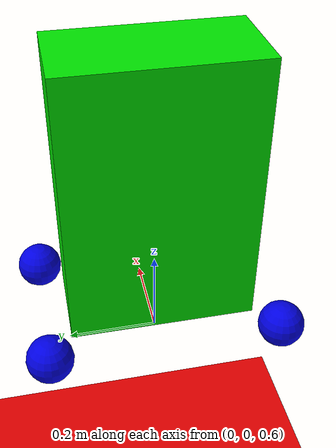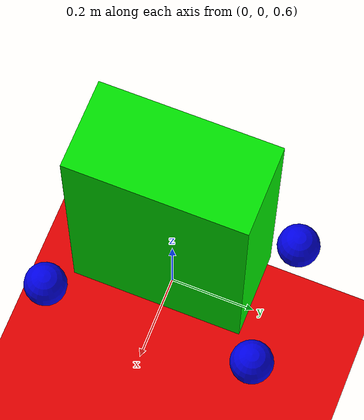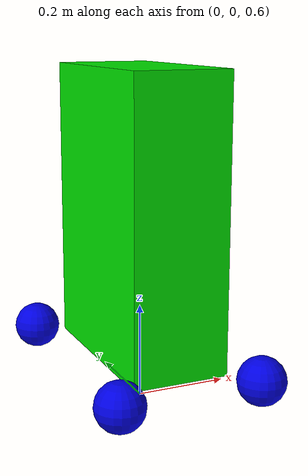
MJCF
<mujoco>
    <worldbody>
        <light diffuse=".5 .5 .5" pos="0 0 2" dir="0 -1 0"/>
        <geom type="plane" size="1 1 0.1" rgba=".9 0 0 1"/>

        <body pos="0 0 1">
            <joint type="free"/>
            <geom type="box" size="0.1 0.2 0.3" rgba="0 .9 0 1"/>

            <!-- Front Left Wheel -->
            <body pos="0.15 0.25 -0.3">
                <joint name="front_left_wheel_joint" type="hinge" axis="0 1 0"/>
                <geom type="sphere" size="0.05" rgba="0 0 .9 1"/>
            </body>

            <!-- Front Right Wheel -->
            <body pos="0.15 -0.25 -0.3">
                <joint name="front_right_wheel_joint" type="hinge" axis="0 1 0"/>
                <geom type="sphere" size="0.05" rgba="0 0 .9 1"/>
            </body>

            <!-- Rear Left Wheel -->
            <body pos="-0.15 0.25 -0.3">
                <joint name="rear_left_wheel_joint" type="hinge" axis="0 1 0"/>
                <geom type="sphere" size="0.05" rgba="0 0 .9 1"/>
            </body>

            <!-- Rear Right Wheel -->
            <body pos="-0.15 -0.25 -0.3">
                <joint name="rear_right_wheel_joint" type="hinge" axis="0 1 0"/>
                <geom type="sphere" size="0.05" rgba="0 0 .9 1"/>
            </body>
        </body>
    </worldbody>

    <actuator>
        <!-- Actuators for the wheel joints -->
        <motor joint="front_left_wheel_joint" name="motor_front_left" />
        <motor joint="front_right_wheel_joint" name="motor_front_right" />
        <motor joint="rear_left_wheel_joint" name="motor_rear_left" />
        <motor joint="rear_right_wheel_joint" name="motor_rear_right" />
    </actuator>
</mujoco>
